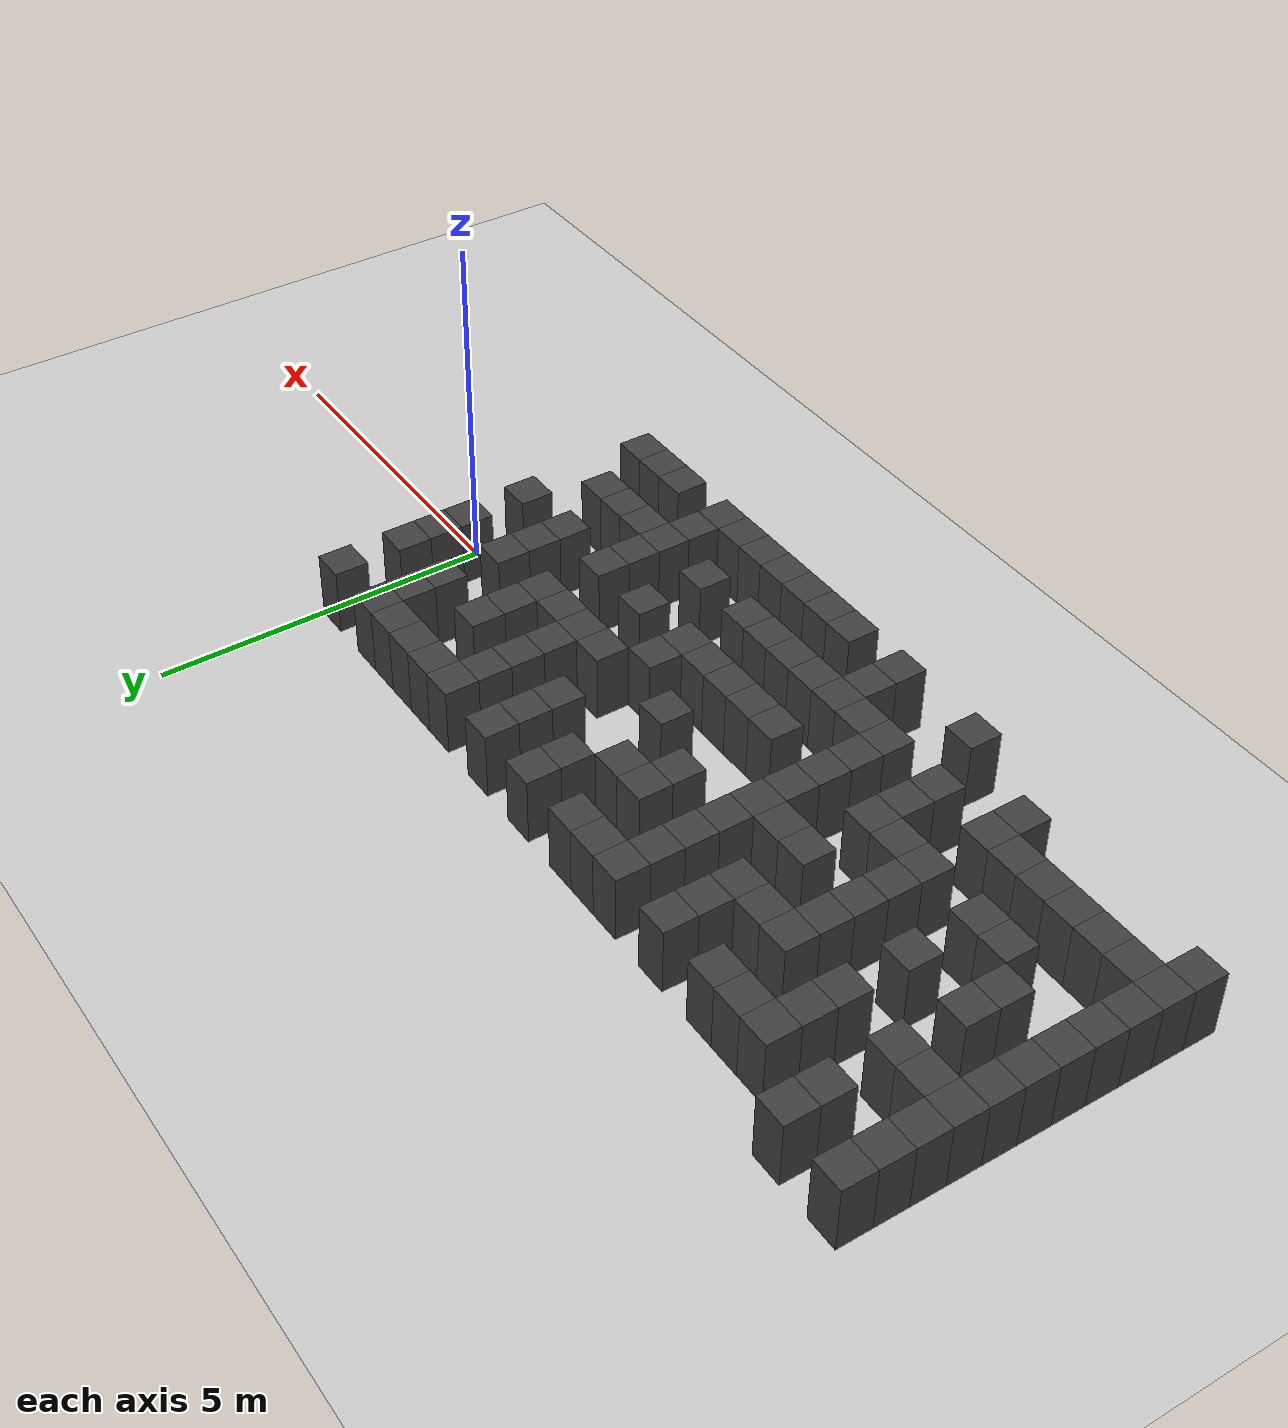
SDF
<sdf version="1.7">
 <world name="map_16884">
  <model name="ground_plane">
   <static>true</static>
   <link name="link">
    <collision name="collision">
     <geometry><plane><normal>0 0 1</normal><size>200 200</size></plane></geometry>
    </collision>
    <visual name="visual">
     <geometry><plane><normal>0 0 1</normal><size>200 200</size></plane></geometry>
     <material><ambient>0.8 0.8 0.8 1</ambient><diffuse>0.8 0.8 0.8 1</diffuse></material>
    </visual>
   </link>
  </model>
  <model name="maze_environment">
   <static>true</static>
   <link name="wall_483">
    <pose>-12.250 2.750 0.500 0 0 0</pose>
    <collision name="col"><geometry><box><size>0.5 0.5 1.0</size></box></geometry></collision>
    <visual name="vis">
     <geometry><box><size>0.5 0.5 1.0</size></box></geometry>
     <material><ambient>0.15 0.15 0.15 1</ambient><diffuse>0.25 0.25 0.25 1</diffuse></material>
    </visual>
   </link>
   <link name="wall_484">
    <pose>-11.250 2.750 0.500 0 0 0</pose>
    <collision name="col"><geometry><box><size>0.5 0.5 1.0</size></box></geometry></collision>
    <visual name="vis">
     <geometry><box><size>0.5 0.5 1.0</size></box></geometry>
     <material><ambient>0.15 0.15 0.15 1</ambient><diffuse>0.25 0.25 0.25 1</diffuse></material>
    </visual>
   </link>
   <link name="wall_498">
    <pose>-12.250 2.250 0.500 0 0 0</pose>
    <collision name="col"><geometry><box><size>0.5 0.5 1.0</size></box></geometry></collision>
    <visual name="vis">
     <geometry><box><size>0.5 0.5 1.0</size></box></geometry>
     <material><ambient>0.15 0.15 0.15 1</ambient><diffuse>0.25 0.25 0.25 1</diffuse></material>
    </visual>
   </link>
   <link name="wall_499">
    <pose>-11.250 2.250 0.500 0 0 0</pose>
    <collision name="col"><geometry><box><size>0.5 0.5 1.0</size></box></geometry></collision>
    <visual name="vis">
     <geometry><box><size>0.5 0.5 1.0</size></box></geometry>
     <material><ambient>0.15 0.15 0.15 1</ambient><diffuse>0.25 0.25 0.25 1</diffuse></material>
    </visual>
   </link>
   <link name="wall_500">
    <pose>-10.250 2.250 0.500 0 0 0</pose>
    <collision name="col"><geometry><box><size>0.5 0.5 1.0</size></box></geometry></collision>
    <visual name="vis">
     <geometry><box><size>0.5 0.5 1.0</size></box></geometry>
     <material><ambient>0.15 0.15 0.15 1</ambient><diffuse>0.25 0.25 0.25 1</diffuse></material>
    </visual>
   </link>
   <link name="wall_501">
    <pose>-9.750 2.250 0.500 0 0 0</pose>
    <collision name="col"><geometry><box><size>0.5 0.5 1.0</size></box></geometry></collision>
    <visual name="vis">
     <geometry><box><size>0.5 0.5 1.0</size></box></geometry>
     <material><ambient>0.15 0.15 0.15 1</ambient><diffuse>0.25 0.25 0.25 1</diffuse></material>
    </visual>
   </link>
   <link name="wall_502">
    <pose>-9.250 2.250 0.500 0 0 0</pose>
    <collision name="col"><geometry><box><size>0.5 0.5 1.0</size></box></geometry></collision>
    <visual name="vis">
     <geometry><box><size>0.5 0.5 1.0</size></box></geometry>
     <material><ambient>0.15 0.15 0.15 1</ambient><diffuse>0.25 0.25 0.25 1</diffuse></material>
    </visual>
   </link>
   <link name="wall_503">
    <pose>-8.250 2.250 0.500 0 0 0</pose>
    <collision name="col"><geometry><box><size>0.5 0.5 1.0</size></box></geometry></collision>
    <visual name="vis">
     <geometry><box><size>0.5 0.5 1.0</size></box></geometry>
     <material><ambient>0.15 0.15 0.15 1</ambient><diffuse>0.25 0.25 0.25 1</diffuse></material>
    </visual>
   </link>
   <link name="wall_504">
    <pose>-7.250 2.250 0.500 0 0 0</pose>
    <collision name="col"><geometry><box><size>0.5 0.5 1.0</size></box></geometry></collision>
    <visual name="vis">
     <geometry><box><size>0.5 0.5 1.0</size></box></geometry>
     <material><ambient>0.15 0.15 0.15 1</ambient><diffuse>0.25 0.25 0.25 1</diffuse></material>
    </visual>
   </link>
   <link name="wall_505">
    <pose>-6.750 2.250 0.500 0 0 0</pose>
    <collision name="col"><geometry><box><size>0.5 0.5 1.0</size></box></geometry></collision>
    <visual name="vis">
     <geometry><box><size>0.5 0.5 1.0</size></box></geometry>
     <material><ambient>0.15 0.15 0.15 1</ambient><diffuse>0.25 0.25 0.25 1</diffuse></material>
    </visual>
   </link>
   <link name="wall_506">
    <pose>-6.250 2.250 0.500 0 0 0</pose>
    <collision name="col"><geometry><box><size>0.5 0.5 1.0</size></box></geometry></collision>
    <visual name="vis">
     <geometry><box><size>0.5 0.5 1.0</size></box></geometry>
     <material><ambient>0.15 0.15 0.15 1</ambient><diffuse>0.25 0.25 0.25 1</diffuse></material>
    </visual>
   </link>
   <link name="wall_507">
    <pose>-5.250 2.250 0.500 0 0 0</pose>
    <collision name="col"><geometry><box><size>0.5 0.5 1.0</size></box></geometry></collision>
    <visual name="vis">
     <geometry><box><size>0.5 0.5 1.0</size></box></geometry>
     <material><ambient>0.15 0.15 0.15 1</ambient><diffuse>0.25 0.25 0.25 1</diffuse></material>
    </visual>
   </link>
   <link name="wall_508">
    <pose>-4.250 2.250 0.500 0 0 0</pose>
    <collision name="col"><geometry><box><size>0.5 0.5 1.0</size></box></geometry></collision>
    <visual name="vis">
     <geometry><box><size>0.5 0.5 1.0</size></box></geometry>
     <material><ambient>0.15 0.15 0.15 1</ambient><diffuse>0.25 0.25 0.25 1</diffuse></material>
    </visual>
   </link>
   <link name="wall_509">
    <pose>-3.250 2.250 0.500 0 0 0</pose>
    <collision name="col"><geometry><box><size>0.5 0.5 1.0</size></box></geometry></collision>
    <visual name="vis">
     <geometry><box><size>0.5 0.5 1.0</size></box></geometry>
     <material><ambient>0.15 0.15 0.15 1</ambient><diffuse>0.25 0.25 0.25 1</diffuse></material>
    </visual>
   </link>
   <link name="wall_510">
    <pose>-2.750 2.250 0.500 0 0 0</pose>
    <collision name="col"><geometry><box><size>0.5 0.5 1.0</size></box></geometry></collision>
    <visual name="vis">
     <geometry><box><size>0.5 0.5 1.0</size></box></geometry>
     <material><ambient>0.15 0.15 0.15 1</ambient><diffuse>0.25 0.25 0.25 1</diffuse></material>
    </visual>
   </link>
   <link name="wall_511">
    <pose>-2.250 2.250 0.500 0 0 0</pose>
    <collision name="col"><geometry><box><size>0.5 0.5 1.0</size></box></geometry></collision>
    <visual name="vis">
     <geometry><box><size>0.5 0.5 1.0</size></box></geometry>
     <material><ambient>0.15 0.15 0.15 1</ambient><diffuse>0.25 0.25 0.25 1</diffuse></material>
    </visual>
   </link>
   <link name="wall_512">
    <pose>-1.750 2.250 0.500 0 0 0</pose>
    <collision name="col"><geometry><box><size>0.5 0.5 1.0</size></box></geometry></collision>
    <visual name="vis">
     <geometry><box><size>0.5 0.5 1.0</size></box></geometry>
     <material><ambient>0.15 0.15 0.15 1</ambient><diffuse>0.25 0.25 0.25 1</diffuse></material>
    </visual>
   </link>
   <link name="wall_513">
    <pose>-1.250 2.250 0.500 0 0 0</pose>
    <collision name="col"><geometry><box><size>0.5 0.5 1.0</size></box></geometry></collision>
    <visual name="vis">
     <geometry><box><size>0.5 0.5 1.0</size></box></geometry>
     <material><ambient>0.15 0.15 0.15 1</ambient><diffuse>0.25 0.25 0.25 1</diffuse></material>
    </visual>
   </link>
   <link name="wall_514">
    <pose>-0.250 2.250 0.500 0 0 0</pose>
    <collision name="col"><geometry><box><size>0.5 0.5 1.0</size></box></geometry></collision>
    <visual name="vis">
     <geometry><box><size>0.5 0.5 1.0</size></box></geometry>
     <material><ambient>0.15 0.15 0.15 1</ambient><diffuse>0.25 0.25 0.25 1</diffuse></material>
    </visual>
   </link>
   <link name="wall_530">
    <pose>-12.250 1.750 0.500 0 0 0</pose>
    <collision name="col"><geometry><box><size>0.5 0.5 1.0</size></box></geometry></collision>
    <visual name="vis">
     <geometry><box><size>0.5 0.5 1.0</size></box></geometry>
     <material><ambient>0.15 0.15 0.15 1</ambient><diffuse>0.25 0.25 0.25 1</diffuse></material>
    </visual>
   </link>
   <link name="wall_531">
    <pose>-10.250 1.750 0.500 0 0 0</pose>
    <collision name="col"><geometry><box><size>0.5 0.5 1.0</size></box></geometry></collision>
    <visual name="vis">
     <geometry><box><size>0.5 0.5 1.0</size></box></geometry>
     <material><ambient>0.15 0.15 0.15 1</ambient><diffuse>0.25 0.25 0.25 1</diffuse></material>
    </visual>
   </link>
   <link name="wall_532">
    <pose>-8.250 1.750 0.500 0 0 0</pose>
    <collision name="col"><geometry><box><size>0.5 0.5 1.0</size></box></geometry></collision>
    <visual name="vis">
     <geometry><box><size>0.5 0.5 1.0</size></box></geometry>
     <material><ambient>0.15 0.15 0.15 1</ambient><diffuse>0.25 0.25 0.25 1</diffuse></material>
    </visual>
   </link>
   <link name="wall_533">
    <pose>-7.250 1.750 0.500 0 0 0</pose>
    <collision name="col"><geometry><box><size>0.5 0.5 1.0</size></box></geometry></collision>
    <visual name="vis">
     <geometry><box><size>0.5 0.5 1.0</size></box></geometry>
     <material><ambient>0.15 0.15 0.15 1</ambient><diffuse>0.25 0.25 0.25 1</diffuse></material>
    </visual>
   </link>
   <link name="wall_534">
    <pose>-5.250 1.750 0.500 0 0 0</pose>
    <collision name="col"><geometry><box><size>0.5 0.5 1.0</size></box></geometry></collision>
    <visual name="vis">
     <geometry><box><size>0.5 0.5 1.0</size></box></geometry>
     <material><ambient>0.15 0.15 0.15 1</ambient><diffuse>0.25 0.25 0.25 1</diffuse></material>
    </visual>
   </link>
   <link name="wall_535">
    <pose>-4.250 1.750 0.500 0 0 0</pose>
    <collision name="col"><geometry><box><size>0.5 0.5 1.0</size></box></geometry></collision>
    <visual name="vis">
     <geometry><box><size>0.5 0.5 1.0</size></box></geometry>
     <material><ambient>0.15 0.15 0.15 1</ambient><diffuse>0.25 0.25 0.25 1</diffuse></material>
    </visual>
   </link>
   <link name="wall_536">
    <pose>-3.250 1.750 0.500 0 0 0</pose>
    <collision name="col"><geometry><box><size>0.5 0.5 1.0</size></box></geometry></collision>
    <visual name="vis">
     <geometry><box><size>0.5 0.5 1.0</size></box></geometry>
     <material><ambient>0.15 0.15 0.15 1</ambient><diffuse>0.25 0.25 0.25 1</diffuse></material>
    </visual>
   </link>
   <link name="wall_537">
    <pose>-1.250 1.750 0.500 0 0 0</pose>
    <collision name="col"><geometry><box><size>0.5 0.5 1.0</size></box></geometry></collision>
    <visual name="vis">
     <geometry><box><size>0.5 0.5 1.0</size></box></geometry>
     <material><ambient>0.15 0.15 0.15 1</ambient><diffuse>0.25 0.25 0.25 1</diffuse></material>
    </visual>
   </link>
   <link name="wall_545">
    <pose>-12.250 1.250 0.500 0 0 0</pose>
    <collision name="col"><geometry><box><size>0.5 0.5 1.0</size></box></geometry></collision>
    <visual name="vis">
     <geometry><box><size>0.5 0.5 1.0</size></box></geometry>
     <material><ambient>0.15 0.15 0.15 1</ambient><diffuse>0.25 0.25 0.25 1</diffuse></material>
    </visual>
   </link>
   <link name="wall_546">
    <pose>-11.750 1.250 0.500 0 0 0</pose>
    <collision name="col"><geometry><box><size>0.5 0.5 1.0</size></box></geometry></collision>
    <visual name="vis">
     <geometry><box><size>0.5 0.5 1.0</size></box></geometry>
     <material><ambient>0.15 0.15 0.15 1</ambient><diffuse>0.25 0.25 0.25 1</diffuse></material>
    </visual>
   </link>
   <link name="wall_547">
    <pose>-11.250 1.250 0.500 0 0 0</pose>
    <collision name="col"><geometry><box><size>0.5 0.5 1.0</size></box></geometry></collision>
    <visual name="vis">
     <geometry><box><size>0.5 0.5 1.0</size></box></geometry>
     <material><ambient>0.15 0.15 0.15 1</ambient><diffuse>0.25 0.25 0.25 1</diffuse></material>
    </visual>
   </link>
   <link name="wall_548">
    <pose>-10.250 1.250 0.500 0 0 0</pose>
    <collision name="col"><geometry><box><size>0.5 0.5 1.0</size></box></geometry></collision>
    <visual name="vis">
     <geometry><box><size>0.5 0.5 1.0</size></box></geometry>
     <material><ambient>0.15 0.15 0.15 1</ambient><diffuse>0.25 0.25 0.25 1</diffuse></material>
    </visual>
   </link>
   <link name="wall_549">
    <pose>-9.250 1.250 0.500 0 0 0</pose>
    <collision name="col"><geometry><box><size>0.5 0.5 1.0</size></box></geometry></collision>
    <visual name="vis">
     <geometry><box><size>0.5 0.5 1.0</size></box></geometry>
     <material><ambient>0.15 0.15 0.15 1</ambient><diffuse>0.25 0.25 0.25 1</diffuse></material>
    </visual>
   </link>
   <link name="wall_550">
    <pose>-8.750 1.250 0.500 0 0 0</pose>
    <collision name="col"><geometry><box><size>0.5 0.5 1.0</size></box></geometry></collision>
    <visual name="vis">
     <geometry><box><size>0.5 0.5 1.0</size></box></geometry>
     <material><ambient>0.15 0.15 0.15 1</ambient><diffuse>0.25 0.25 0.25 1</diffuse></material>
    </visual>
   </link>
   <link name="wall_551">
    <pose>-8.250 1.250 0.500 0 0 0</pose>
    <collision name="col"><geometry><box><size>0.5 0.5 1.0</size></box></geometry></collision>
    <visual name="vis">
     <geometry><box><size>0.5 0.5 1.0</size></box></geometry>
     <material><ambient>0.15 0.15 0.15 1</ambient><diffuse>0.25 0.25 0.25 1</diffuse></material>
    </visual>
   </link>
   <link name="wall_552">
    <pose>-7.250 1.250 0.500 0 0 0</pose>
    <collision name="col"><geometry><box><size>0.5 0.5 1.0</size></box></geometry></collision>
    <visual name="vis">
     <geometry><box><size>0.5 0.5 1.0</size></box></geometry>
     <material><ambient>0.15 0.15 0.15 1</ambient><diffuse>0.25 0.25 0.25 1</diffuse></material>
    </visual>
   </link>
   <link name="wall_553">
    <pose>-6.250 1.250 0.500 0 0 0</pose>
    <collision name="col"><geometry><box><size>0.5 0.5 1.0</size></box></geometry></collision>
    <visual name="vis">
     <geometry><box><size>0.5 0.5 1.0</size></box></geometry>
     <material><ambient>0.15 0.15 0.15 1</ambient><diffuse>0.25 0.25 0.25 1</diffuse></material>
    </visual>
   </link>
   <link name="wall_554">
    <pose>-5.750 1.250 0.500 0 0 0</pose>
    <collision name="col"><geometry><box><size>0.5 0.5 1.0</size></box></geometry></collision>
    <visual name="vis">
     <geometry><box><size>0.5 0.5 1.0</size></box></geometry>
     <material><ambient>0.15 0.15 0.15 1</ambient><diffuse>0.25 0.25 0.25 1</diffuse></material>
    </visual>
   </link>
   <link name="wall_555">
    <pose>-4.250 1.250 0.500 0 0 0</pose>
    <collision name="col"><geometry><box><size>0.5 0.5 1.0</size></box></geometry></collision>
    <visual name="vis">
     <geometry><box><size>0.5 0.5 1.0</size></box></geometry>
     <material><ambient>0.15 0.15 0.15 1</ambient><diffuse>0.25 0.25 0.25 1</diffuse></material>
    </visual>
   </link>
   <link name="wall_556">
    <pose>-3.250 1.250 0.500 0 0 0</pose>
    <collision name="col"><geometry><box><size>0.5 0.5 1.0</size></box></geometry></collision>
    <visual name="vis">
     <geometry><box><size>0.5 0.5 1.0</size></box></geometry>
     <material><ambient>0.15 0.15 0.15 1</ambient><diffuse>0.25 0.25 0.25 1</diffuse></material>
    </visual>
   </link>
   <link name="wall_557">
    <pose>-2.250 1.250 0.500 0 0 0</pose>
    <collision name="col"><geometry><box><size>0.5 0.5 1.0</size></box></geometry></collision>
    <visual name="vis">
     <geometry><box><size>0.5 0.5 1.0</size></box></geometry>
     <material><ambient>0.15 0.15 0.15 1</ambient><diffuse>0.25 0.25 0.25 1</diffuse></material>
    </visual>
   </link>
   <link name="wall_558">
    <pose>-1.250 1.250 0.500 0 0 0</pose>
    <collision name="col"><geometry><box><size>0.5 0.5 1.0</size></box></geometry></collision>
    <visual name="vis">
     <geometry><box><size>0.5 0.5 1.0</size></box></geometry>
     <material><ambient>0.15 0.15 0.15 1</ambient><diffuse>0.25 0.25 0.25 1</diffuse></material>
    </visual>
   </link>
   <link name="wall_559">
    <pose>-0.250 1.250 0.500 0 0 0</pose>
    <collision name="col"><geometry><box><size>0.5 0.5 1.0</size></box></geometry></collision>
    <visual name="vis">
     <geometry><box><size>0.5 0.5 1.0</size></box></geometry>
     <material><ambient>0.15 0.15 0.15 1</ambient><diffuse>0.25 0.25 0.25 1</diffuse></material>
    </visual>
   </link>
   <link name="wall_576">
    <pose>-12.250 0.750 0.500 0 0 0</pose>
    <collision name="col"><geometry><box><size>0.5 0.5 1.0</size></box></geometry></collision>
    <visual name="vis">
     <geometry><box><size>0.5 0.5 1.0</size></box></geometry>
     <material><ambient>0.15 0.15 0.15 1</ambient><diffuse>0.25 0.25 0.25 1</diffuse></material>
    </visual>
   </link>
   <link name="wall_577">
    <pose>-9.250 0.750 0.500 0 0 0</pose>
    <collision name="col"><geometry><box><size>0.5 0.5 1.0</size></box></geometry></collision>
    <visual name="vis">
     <geometry><box><size>0.5 0.5 1.0</size></box></geometry>
     <material><ambient>0.15 0.15 0.15 1</ambient><diffuse>0.25 0.25 0.25 1</diffuse></material>
    </visual>
   </link>
   <link name="wall_578">
    <pose>-7.250 0.750 0.500 0 0 0</pose>
    <collision name="col"><geometry><box><size>0.5 0.5 1.0</size></box></geometry></collision>
    <visual name="vis">
     <geometry><box><size>0.5 0.5 1.0</size></box></geometry>
     <material><ambient>0.15 0.15 0.15 1</ambient><diffuse>0.25 0.25 0.25 1</diffuse></material>
    </visual>
   </link>
   <link name="wall_579">
    <pose>-6.250 0.750 0.500 0 0 0</pose>
    <collision name="col"><geometry><box><size>0.5 0.5 1.0</size></box></geometry></collision>
    <visual name="vis">
     <geometry><box><size>0.5 0.5 1.0</size></box></geometry>
     <material><ambient>0.15 0.15 0.15 1</ambient><diffuse>0.25 0.25 0.25 1</diffuse></material>
    </visual>
   </link>
   <link name="wall_580">
    <pose>-3.250 0.750 0.500 0 0 0</pose>
    <collision name="col"><geometry><box><size>0.5 0.5 1.0</size></box></geometry></collision>
    <visual name="vis">
     <geometry><box><size>0.5 0.5 1.0</size></box></geometry>
     <material><ambient>0.15 0.15 0.15 1</ambient><diffuse>0.25 0.25 0.25 1</diffuse></material>
    </visual>
   </link>
   <link name="wall_581">
    <pose>-2.250 0.750 0.500 0 0 0</pose>
    <collision name="col"><geometry><box><size>0.5 0.5 1.0</size></box></geometry></collision>
    <visual name="vis">
     <geometry><box><size>0.5 0.5 1.0</size></box></geometry>
     <material><ambient>0.15 0.15 0.15 1</ambient><diffuse>0.25 0.25 0.25 1</diffuse></material>
    </visual>
   </link>
   <link name="wall_582">
    <pose>-0.250 0.750 0.500 0 0 0</pose>
    <collision name="col"><geometry><box><size>0.5 0.5 1.0</size></box></geometry></collision>
    <visual name="vis">
     <geometry><box><size>0.5 0.5 1.0</size></box></geometry>
     <material><ambient>0.15 0.15 0.15 1</ambient><diffuse>0.25 0.25 0.25 1</diffuse></material>
    </visual>
   </link>
   <link name="wall_590">
    <pose>-12.250 0.250 0.500 0 0 0</pose>
    <collision name="col"><geometry><box><size>0.5 0.5 1.0</size></box></geometry></collision>
    <visual name="vis">
     <geometry><box><size>0.5 0.5 1.0</size></box></geometry>
     <material><ambient>0.15 0.15 0.15 1</ambient><diffuse>0.25 0.25 0.25 1</diffuse></material>
    </visual>
   </link>
   <link name="wall_591">
    <pose>-11.250 0.250 0.500 0 0 0</pose>
    <collision name="col"><geometry><box><size>0.5 0.5 1.0</size></box></geometry></collision>
    <visual name="vis">
     <geometry><box><size>0.5 0.5 1.0</size></box></geometry>
     <material><ambient>0.15 0.15 0.15 1</ambient><diffuse>0.25 0.25 0.25 1</diffuse></material>
    </visual>
   </link>
   <link name="wall_592">
    <pose>-10.250 0.250 0.500 0 0 0</pose>
    <collision name="col"><geometry><box><size>0.5 0.5 1.0</size></box></geometry></collision>
    <visual name="vis">
     <geometry><box><size>0.5 0.5 1.0</size></box></geometry>
     <material><ambient>0.15 0.15 0.15 1</ambient><diffuse>0.25 0.25 0.25 1</diffuse></material>
    </visual>
   </link>
   <link name="wall_593">
    <pose>-9.250 0.250 0.500 0 0 0</pose>
    <collision name="col"><geometry><box><size>0.5 0.5 1.0</size></box></geometry></collision>
    <visual name="vis">
     <geometry><box><size>0.5 0.5 1.0</size></box></geometry>
     <material><ambient>0.15 0.15 0.15 1</ambient><diffuse>0.25 0.25 0.25 1</diffuse></material>
    </visual>
   </link>
   <link name="wall_594">
    <pose>-8.250 0.250 0.500 0 0 0</pose>
    <collision name="col"><geometry><box><size>0.5 0.5 1.0</size></box></geometry></collision>
    <visual name="vis">
     <geometry><box><size>0.5 0.5 1.0</size></box></geometry>
     <material><ambient>0.15 0.15 0.15 1</ambient><diffuse>0.25 0.25 0.25 1</diffuse></material>
    </visual>
   </link>
   <link name="wall_595">
    <pose>-7.750 0.250 0.500 0 0 0</pose>
    <collision name="col"><geometry><box><size>0.5 0.5 1.0</size></box></geometry></collision>
    <visual name="vis">
     <geometry><box><size>0.5 0.5 1.0</size></box></geometry>
     <material><ambient>0.15 0.15 0.15 1</ambient><diffuse>0.25 0.25 0.25 1</diffuse></material>
    </visual>
   </link>
   <link name="wall_596">
    <pose>-7.250 0.250 0.500 0 0 0</pose>
    <collision name="col"><geometry><box><size>0.5 0.5 1.0</size></box></geometry></collision>
    <visual name="vis">
     <geometry><box><size>0.5 0.5 1.0</size></box></geometry>
     <material><ambient>0.15 0.15 0.15 1</ambient><diffuse>0.25 0.25 0.25 1</diffuse></material>
    </visual>
   </link>
   <link name="wall_597">
    <pose>-5.250 0.250 0.500 0 0 0</pose>
    <collision name="col"><geometry><box><size>0.5 0.5 1.0</size></box></geometry></collision>
    <visual name="vis">
     <geometry><box><size>0.5 0.5 1.0</size></box></geometry>
     <material><ambient>0.15 0.15 0.15 1</ambient><diffuse>0.25 0.25 0.25 1</diffuse></material>
    </visual>
   </link>
   <link name="wall_598">
    <pose>-3.750 0.250 0.500 0 0 0</pose>
    <collision name="col"><geometry><box><size>0.5 0.5 1.0</size></box></geometry></collision>
    <visual name="vis">
     <geometry><box><size>0.5 0.5 1.0</size></box></geometry>
     <material><ambient>0.15 0.15 0.15 1</ambient><diffuse>0.25 0.25 0.25 1</diffuse></material>
    </visual>
   </link>
   <link name="wall_599">
    <pose>-3.250 0.250 0.500 0 0 0</pose>
    <collision name="col"><geometry><box><size>0.5 0.5 1.0</size></box></geometry></collision>
    <visual name="vis">
     <geometry><box><size>0.5 0.5 1.0</size></box></geometry>
     <material><ambient>0.15 0.15 0.15 1</ambient><diffuse>0.25 0.25 0.25 1</diffuse></material>
    </visual>
   </link>
   <link name="wall_600">
    <pose>-2.750 0.250 0.500 0 0 0</pose>
    <collision name="col"><geometry><box><size>0.5 0.5 1.0</size></box></geometry></collision>
    <visual name="vis">
     <geometry><box><size>0.5 0.5 1.0</size></box></geometry>
     <material><ambient>0.15 0.15 0.15 1</ambient><diffuse>0.25 0.25 0.25 1</diffuse></material>
    </visual>
   </link>
   <link name="wall_601">
    <pose>-2.250 0.250 0.500 0 0 0</pose>
    <collision name="col"><geometry><box><size>0.5 0.5 1.0</size></box></geometry></collision>
    <visual name="vis">
     <geometry><box><size>0.5 0.5 1.0</size></box></geometry>
     <material><ambient>0.15 0.15 0.15 1</ambient><diffuse>0.25 0.25 0.25 1</diffuse></material>
    </visual>
   </link>
   <link name="wall_602">
    <pose>-1.250 0.250 0.500 0 0 0</pose>
    <collision name="col"><geometry><box><size>0.5 0.5 1.0</size></box></geometry></collision>
    <visual name="vis">
     <geometry><box><size>0.5 0.5 1.0</size></box></geometry>
     <material><ambient>0.15 0.15 0.15 1</ambient><diffuse>0.25 0.25 0.25 1</diffuse></material>
    </visual>
   </link>
   <link name="wall_603">
    <pose>-0.250 0.250 0.500 0 0 0</pose>
    <collision name="col"><geometry><box><size>0.5 0.5 1.0</size></box></geometry></collision>
    <visual name="vis">
     <geometry><box><size>0.5 0.5 1.0</size></box></geometry>
     <material><ambient>0.15 0.15 0.15 1</ambient><diffuse>0.25 0.25 0.25 1</diffuse></material>
    </visual>
   </link>
   <link name="wall_620">
    <pose>-12.250 -0.250 0.500 0 0 0</pose>
    <collision name="col"><geometry><box><size>0.5 0.5 1.0</size></box></geometry></collision>
    <visual name="vis">
     <geometry><box><size>0.5 0.5 1.0</size></box></geometry>
     <material><ambient>0.15 0.15 0.15 1</ambient><diffuse>0.25 0.25 0.25 1</diffuse></material>
    </visual>
   </link>
   <link name="wall_621">
    <pose>-11.250 -0.250 0.500 0 0 0</pose>
    <collision name="col"><geometry><box><size>0.5 0.5 1.0</size></box></geometry></collision>
    <visual name="vis">
     <geometry><box><size>0.5 0.5 1.0</size></box></geometry>
     <material><ambient>0.15 0.15 0.15 1</ambient><diffuse>0.25 0.25 0.25 1</diffuse></material>
    </visual>
   </link>
   <link name="wall_622">
    <pose>-9.250 -0.250 0.500 0 0 0</pose>
    <collision name="col"><geometry><box><size>0.5 0.5 1.0</size></box></geometry></collision>
    <visual name="vis">
     <geometry><box><size>0.5 0.5 1.0</size></box></geometry>
     <material><ambient>0.15 0.15 0.15 1</ambient><diffuse>0.25 0.25 0.25 1</diffuse></material>
    </visual>
   </link>
   <link name="wall_623">
    <pose>-7.250 -0.250 0.500 0 0 0</pose>
    <collision name="col"><geometry><box><size>0.5 0.5 1.0</size></box></geometry></collision>
    <visual name="vis">
     <geometry><box><size>0.5 0.5 1.0</size></box></geometry>
     <material><ambient>0.15 0.15 0.15 1</ambient><diffuse>0.25 0.25 0.25 1</diffuse></material>
    </visual>
   </link>
   <link name="wall_624">
    <pose>-4.250 -0.250 0.500 0 0 0</pose>
    <collision name="col"><geometry><box><size>0.5 0.5 1.0</size></box></geometry></collision>
    <visual name="vis">
     <geometry><box><size>0.5 0.5 1.0</size></box></geometry>
     <material><ambient>0.15 0.15 0.15 1</ambient><diffuse>0.25 0.25 0.25 1</diffuse></material>
    </visual>
   </link>
   <link name="wall_625">
    <pose>-1.250 -0.250 0.500 0 0 0</pose>
    <collision name="col"><geometry><box><size>0.5 0.5 1.0</size></box></geometry></collision>
    <visual name="vis">
     <geometry><box><size>0.5 0.5 1.0</size></box></geometry>
     <material><ambient>0.15 0.15 0.15 1</ambient><diffuse>0.25 0.25 0.25 1</diffuse></material>
    </visual>
   </link>
   <link name="wall_631">
    <pose>-12.250 -0.750 0.500 0 0 0</pose>
    <collision name="col"><geometry><box><size>0.5 0.5 1.0</size></box></geometry></collision>
    <visual name="vis">
     <geometry><box><size>0.5 0.5 1.0</size></box></geometry>
     <material><ambient>0.15 0.15 0.15 1</ambient><diffuse>0.25 0.25 0.25 1</diffuse></material>
    </visual>
   </link>
   <link name="wall_632">
    <pose>-10.750 -0.750 0.500 0 0 0</pose>
    <collision name="col"><geometry><box><size>0.5 0.5 1.0</size></box></geometry></collision>
    <visual name="vis">
     <geometry><box><size>0.5 0.5 1.0</size></box></geometry>
     <material><ambient>0.15 0.15 0.15 1</ambient><diffuse>0.25 0.25 0.25 1</diffuse></material>
    </visual>
   </link>
   <link name="wall_633">
    <pose>-10.250 -0.750 0.500 0 0 0</pose>
    <collision name="col"><geometry><box><size>0.5 0.5 1.0</size></box></geometry></collision>
    <visual name="vis">
     <geometry><box><size>0.5 0.5 1.0</size></box></geometry>
     <material><ambient>0.15 0.15 0.15 1</ambient><diffuse>0.25 0.25 0.25 1</diffuse></material>
    </visual>
   </link>
   <link name="wall_634">
    <pose>-9.250 -0.750 0.500 0 0 0</pose>
    <collision name="col"><geometry><box><size>0.5 0.5 1.0</size></box></geometry></collision>
    <visual name="vis">
     <geometry><box><size>0.5 0.5 1.0</size></box></geometry>
     <material><ambient>0.15 0.15 0.15 1</ambient><diffuse>0.25 0.25 0.25 1</diffuse></material>
    </visual>
   </link>
   <link name="wall_635">
    <pose>-8.750 -0.750 0.500 0 0 0</pose>
    <collision name="col"><geometry><box><size>0.5 0.5 1.0</size></box></geometry></collision>
    <visual name="vis">
     <geometry><box><size>0.5 0.5 1.0</size></box></geometry>
     <material><ambient>0.15 0.15 0.15 1</ambient><diffuse>0.25 0.25 0.25 1</diffuse></material>
    </visual>
   </link>
   <link name="wall_636">
    <pose>-8.250 -0.750 0.500 0 0 0</pose>
    <collision name="col"><geometry><box><size>0.5 0.5 1.0</size></box></geometry></collision>
    <visual name="vis">
     <geometry><box><size>0.5 0.5 1.0</size></box></geometry>
     <material><ambient>0.15 0.15 0.15 1</ambient><diffuse>0.25 0.25 0.25 1</diffuse></material>
    </visual>
   </link>
   <link name="wall_637">
    <pose>-7.250 -0.750 0.500 0 0 0</pose>
    <collision name="col"><geometry><box><size>0.5 0.5 1.0</size></box></geometry></collision>
    <visual name="vis">
     <geometry><box><size>0.5 0.5 1.0</size></box></geometry>
     <material><ambient>0.15 0.15 0.15 1</ambient><diffuse>0.25 0.25 0.25 1</diffuse></material>
    </visual>
   </link>
   <link name="wall_638">
    <pose>-6.250 -0.750 0.500 0 0 0</pose>
    <collision name="col"><geometry><box><size>0.5 0.5 1.0</size></box></geometry></collision>
    <visual name="vis">
     <geometry><box><size>0.5 0.5 1.0</size></box></geometry>
     <material><ambient>0.15 0.15 0.15 1</ambient><diffuse>0.25 0.25 0.25 1</diffuse></material>
    </visual>
   </link>
   <link name="wall_639">
    <pose>-5.750 -0.750 0.500 0 0 0</pose>
    <collision name="col"><geometry><box><size>0.5 0.5 1.0</size></box></geometry></collision>
    <visual name="vis">
     <geometry><box><size>0.5 0.5 1.0</size></box></geometry>
     <material><ambient>0.15 0.15 0.15 1</ambient><diffuse>0.25 0.25 0.25 1</diffuse></material>
    </visual>
   </link>
   <link name="wall_640">
    <pose>-5.250 -0.750 0.500 0 0 0</pose>
    <collision name="col"><geometry><box><size>0.5 0.5 1.0</size></box></geometry></collision>
    <visual name="vis">
     <geometry><box><size>0.5 0.5 1.0</size></box></geometry>
     <material><ambient>0.15 0.15 0.15 1</ambient><diffuse>0.25 0.25 0.25 1</diffuse></material>
    </visual>
   </link>
   <link name="wall_641">
    <pose>-4.750 -0.750 0.500 0 0 0</pose>
    <collision name="col"><geometry><box><size>0.5 0.5 1.0</size></box></geometry></collision>
    <visual name="vis">
     <geometry><box><size>0.5 0.5 1.0</size></box></geometry>
     <material><ambient>0.15 0.15 0.15 1</ambient><diffuse>0.25 0.25 0.25 1</diffuse></material>
    </visual>
   </link>
   <link name="wall_642">
    <pose>-4.250 -0.750 0.500 0 0 0</pose>
    <collision name="col"><geometry><box><size>0.5 0.5 1.0</size></box></geometry></collision>
    <visual name="vis">
     <geometry><box><size>0.5 0.5 1.0</size></box></geometry>
     <material><ambient>0.15 0.15 0.15 1</ambient><diffuse>0.25 0.25 0.25 1</diffuse></material>
    </visual>
   </link>
   <link name="wall_643">
    <pose>-3.250 -0.750 0.500 0 0 0</pose>
    <collision name="col"><geometry><box><size>0.5 0.5 1.0</size></box></geometry></collision>
    <visual name="vis">
     <geometry><box><size>0.5 0.5 1.0</size></box></geometry>
     <material><ambient>0.15 0.15 0.15 1</ambient><diffuse>0.25 0.25 0.25 1</diffuse></material>
    </visual>
   </link>
   <link name="wall_644">
    <pose>-2.250 -0.750 0.500 0 0 0</pose>
    <collision name="col"><geometry><box><size>0.5 0.5 1.0</size></box></geometry></collision>
    <visual name="vis">
     <geometry><box><size>0.5 0.5 1.0</size></box></geometry>
     <material><ambient>0.15 0.15 0.15 1</ambient><diffuse>0.25 0.25 0.25 1</diffuse></material>
    </visual>
   </link>
   <link name="wall_645">
    <pose>-1.250 -0.750 0.500 0 0 0</pose>
    <collision name="col"><geometry><box><size>0.5 0.5 1.0</size></box></geometry></collision>
    <visual name="vis">
     <geometry><box><size>0.5 0.5 1.0</size></box></geometry>
     <material><ambient>0.15 0.15 0.15 1</ambient><diffuse>0.25 0.25 0.25 1</diffuse></material>
    </visual>
   </link>
   <link name="wall_646">
    <pose>-0.250 -0.750 0.500 0 0 0</pose>
    <collision name="col"><geometry><box><size>0.5 0.5 1.0</size></box></geometry></collision>
    <visual name="vis">
     <geometry><box><size>0.5 0.5 1.0</size></box></geometry>
     <material><ambient>0.15 0.15 0.15 1</ambient><diffuse>0.25 0.25 0.25 1</diffuse></material>
    </visual>
   </link>
   <link name="wall_665">
    <pose>-12.250 -1.250 0.500 0 0 0</pose>
    <collision name="col"><geometry><box><size>0.5 0.5 1.0</size></box></geometry></collision>
    <visual name="vis">
     <geometry><box><size>0.5 0.5 1.0</size></box></geometry>
     <material><ambient>0.15 0.15 0.15 1</ambient><diffuse>0.25 0.25 0.25 1</diffuse></material>
    </visual>
   </link>
   <link name="wall_666">
    <pose>-8.250 -1.250 0.500 0 0 0</pose>
    <collision name="col"><geometry><box><size>0.5 0.5 1.0</size></box></geometry></collision>
    <visual name="vis">
     <geometry><box><size>0.5 0.5 1.0</size></box></geometry>
     <material><ambient>0.15 0.15 0.15 1</ambient><diffuse>0.25 0.25 0.25 1</diffuse></material>
    </visual>
   </link>
   <link name="wall_667">
    <pose>-7.250 -1.250 0.500 0 0 0</pose>
    <collision name="col"><geometry><box><size>0.5 0.5 1.0</size></box></geometry></collision>
    <visual name="vis">
     <geometry><box><size>0.5 0.5 1.0</size></box></geometry>
     <material><ambient>0.15 0.15 0.15 1</ambient><diffuse>0.25 0.25 0.25 1</diffuse></material>
    </visual>
   </link>
   <link name="wall_668">
    <pose>-2.250 -1.250 0.500 0 0 0</pose>
    <collision name="col"><geometry><box><size>0.5 0.5 1.0</size></box></geometry></collision>
    <visual name="vis">
     <geometry><box><size>0.5 0.5 1.0</size></box></geometry>
     <material><ambient>0.15 0.15 0.15 1</ambient><diffuse>0.25 0.25 0.25 1</diffuse></material>
    </visual>
   </link>
   <link name="wall_675">
    <pose>-12.250 -1.750 0.500 0 0 0</pose>
    <collision name="col"><geometry><box><size>0.5 0.5 1.0</size></box></geometry></collision>
    <visual name="vis">
     <geometry><box><size>0.5 0.5 1.0</size></box></geometry>
     <material><ambient>0.15 0.15 0.15 1</ambient><diffuse>0.25 0.25 0.25 1</diffuse></material>
    </visual>
   </link>
   <link name="wall_676">
    <pose>-11.750 -1.750 0.500 0 0 0</pose>
    <collision name="col"><geometry><box><size>0.5 0.5 1.0</size></box></geometry></collision>
    <visual name="vis">
     <geometry><box><size>0.5 0.5 1.0</size></box></geometry>
     <material><ambient>0.15 0.15 0.15 1</ambient><diffuse>0.25 0.25 0.25 1</diffuse></material>
    </visual>
   </link>
   <link name="wall_677">
    <pose>-11.250 -1.750 0.500 0 0 0</pose>
    <collision name="col"><geometry><box><size>0.5 0.5 1.0</size></box></geometry></collision>
    <visual name="vis">
     <geometry><box><size>0.5 0.5 1.0</size></box></geometry>
     <material><ambient>0.15 0.15 0.15 1</ambient><diffuse>0.25 0.25 0.25 1</diffuse></material>
    </visual>
   </link>
   <link name="wall_678">
    <pose>-10.750 -1.750 0.500 0 0 0</pose>
    <collision name="col"><geometry><box><size>0.5 0.5 1.0</size></box></geometry></collision>
    <visual name="vis">
     <geometry><box><size>0.5 0.5 1.0</size></box></geometry>
     <material><ambient>0.15 0.15 0.15 1</ambient><diffuse>0.25 0.25 0.25 1</diffuse></material>
    </visual>
   </link>
   <link name="wall_679">
    <pose>-10.250 -1.750 0.500 0 0 0</pose>
    <collision name="col"><geometry><box><size>0.5 0.5 1.0</size></box></geometry></collision>
    <visual name="vis">
     <geometry><box><size>0.5 0.5 1.0</size></box></geometry>
     <material><ambient>0.15 0.15 0.15 1</ambient><diffuse>0.25 0.25 0.25 1</diffuse></material>
    </visual>
   </link>
   <link name="wall_680">
    <pose>-9.750 -1.750 0.500 0 0 0</pose>
    <collision name="col"><geometry><box><size>0.5 0.5 1.0</size></box></geometry></collision>
    <visual name="vis">
     <geometry><box><size>0.5 0.5 1.0</size></box></geometry>
     <material><ambient>0.15 0.15 0.15 1</ambient><diffuse>0.25 0.25 0.25 1</diffuse></material>
    </visual>
   </link>
   <link name="wall_681">
    <pose>-9.250 -1.750 0.500 0 0 0</pose>
    <collision name="col"><geometry><box><size>0.5 0.5 1.0</size></box></geometry></collision>
    <visual name="vis">
     <geometry><box><size>0.5 0.5 1.0</size></box></geometry>
     <material><ambient>0.15 0.15 0.15 1</ambient><diffuse>0.25 0.25 0.25 1</diffuse></material>
    </visual>
   </link>
   <link name="wall_682">
    <pose>-8.250 -1.750 0.500 0 0 0</pose>
    <collision name="col"><geometry><box><size>0.5 0.5 1.0</size></box></geometry></collision>
    <visual name="vis">
     <geometry><box><size>0.5 0.5 1.0</size></box></geometry>
     <material><ambient>0.15 0.15 0.15 1</ambient><diffuse>0.25 0.25 0.25 1</diffuse></material>
    </visual>
   </link>
   <link name="wall_683">
    <pose>-7.250 -1.750 0.500 0 0 0</pose>
    <collision name="col"><geometry><box><size>0.5 0.5 1.0</size></box></geometry></collision>
    <visual name="vis">
     <geometry><box><size>0.5 0.5 1.0</size></box></geometry>
     <material><ambient>0.15 0.15 0.15 1</ambient><diffuse>0.25 0.25 0.25 1</diffuse></material>
    </visual>
   </link>
   <link name="wall_684">
    <pose>-6.750 -1.750 0.500 0 0 0</pose>
    <collision name="col"><geometry><box><size>0.5 0.5 1.0</size></box></geometry></collision>
    <visual name="vis">
     <geometry><box><size>0.5 0.5 1.0</size></box></geometry>
     <material><ambient>0.15 0.15 0.15 1</ambient><diffuse>0.25 0.25 0.25 1</diffuse></material>
    </visual>
   </link>
   <link name="wall_685">
    <pose>-6.250 -1.750 0.500 0 0 0</pose>
    <collision name="col"><geometry><box><size>0.5 0.5 1.0</size></box></geometry></collision>
    <visual name="vis">
     <geometry><box><size>0.5 0.5 1.0</size></box></geometry>
     <material><ambient>0.15 0.15 0.15 1</ambient><diffuse>0.25 0.25 0.25 1</diffuse></material>
    </visual>
   </link>
   <link name="wall_686">
    <pose>-5.750 -1.750 0.500 0 0 0</pose>
    <collision name="col"><geometry><box><size>0.5 0.5 1.0</size></box></geometry></collision>
    <visual name="vis">
     <geometry><box><size>0.5 0.5 1.0</size></box></geometry>
     <material><ambient>0.15 0.15 0.15 1</ambient><diffuse>0.25 0.25 0.25 1</diffuse></material>
    </visual>
   </link>
   <link name="wall_687">
    <pose>-5.250 -1.750 0.500 0 0 0</pose>
    <collision name="col"><geometry><box><size>0.5 0.5 1.0</size></box></geometry></collision>
    <visual name="vis">
     <geometry><box><size>0.5 0.5 1.0</size></box></geometry>
     <material><ambient>0.15 0.15 0.15 1</ambient><diffuse>0.25 0.25 0.25 1</diffuse></material>
    </visual>
   </link>
   <link name="wall_688">
    <pose>-4.750 -1.750 0.500 0 0 0</pose>
    <collision name="col"><geometry><box><size>0.5 0.5 1.0</size></box></geometry></collision>
    <visual name="vis">
     <geometry><box><size>0.5 0.5 1.0</size></box></geometry>
     <material><ambient>0.15 0.15 0.15 1</ambient><diffuse>0.25 0.25 0.25 1</diffuse></material>
    </visual>
   </link>
   <link name="wall_689">
    <pose>-4.250 -1.750 0.500 0 0 0</pose>
    <collision name="col"><geometry><box><size>0.5 0.5 1.0</size></box></geometry></collision>
    <visual name="vis">
     <geometry><box><size>0.5 0.5 1.0</size></box></geometry>
     <material><ambient>0.15 0.15 0.15 1</ambient><diffuse>0.25 0.25 0.25 1</diffuse></material>
    </visual>
   </link>
   <link name="wall_690">
    <pose>-3.250 -1.750 0.500 0 0 0</pose>
    <collision name="col"><geometry><box><size>0.5 0.5 1.0</size></box></geometry></collision>
    <visual name="vis">
     <geometry><box><size>0.5 0.5 1.0</size></box></geometry>
     <material><ambient>0.15 0.15 0.15 1</ambient><diffuse>0.25 0.25 0.25 1</diffuse></material>
    </visual>
   </link>
   <link name="wall_691">
    <pose>-2.250 -1.750 0.500 0 0 0</pose>
    <collision name="col"><geometry><box><size>0.5 0.5 1.0</size></box></geometry></collision>
    <visual name="vis">
     <geometry><box><size>0.5 0.5 1.0</size></box></geometry>
     <material><ambient>0.15 0.15 0.15 1</ambient><diffuse>0.25 0.25 0.25 1</diffuse></material>
    </visual>
   </link>
   <link name="wall_692">
    <pose>-1.750 -1.750 0.500 0 0 0</pose>
    <collision name="col"><geometry><box><size>0.5 0.5 1.0</size></box></geometry></collision>
    <visual name="vis">
     <geometry><box><size>0.5 0.5 1.0</size></box></geometry>
     <material><ambient>0.15 0.15 0.15 1</ambient><diffuse>0.25 0.25 0.25 1</diffuse></material>
    </visual>
   </link>
   <link name="wall_693">
    <pose>-1.250 -1.750 0.500 0 0 0</pose>
    <collision name="col"><geometry><box><size>0.5 0.5 1.0</size></box></geometry></collision>
    <visual name="vis">
     <geometry><box><size>0.5 0.5 1.0</size></box></geometry>
     <material><ambient>0.15 0.15 0.15 1</ambient><diffuse>0.25 0.25 0.25 1</diffuse></material>
    </visual>
   </link>
   <link name="wall_694">
    <pose>-0.750 -1.750 0.500 0 0 0</pose>
    <collision name="col"><geometry><box><size>0.5 0.5 1.0</size></box></geometry></collision>
    <visual name="vis">
     <geometry><box><size>0.5 0.5 1.0</size></box></geometry>
     <material><ambient>0.15 0.15 0.15 1</ambient><diffuse>0.25 0.25 0.25 1</diffuse></material>
    </visual>
   </link>
   <link name="wall_712">
    <pose>-12.250 -2.250 0.500 0 0 0</pose>
    <collision name="col"><geometry><box><size>0.5 0.5 1.0</size></box></geometry></collision>
    <visual name="vis">
     <geometry><box><size>0.5 0.5 1.0</size></box></geometry>
     <material><ambient>0.15 0.15 0.15 1</ambient><diffuse>0.25 0.25 0.25 1</diffuse></material>
    </visual>
   </link>
   <link name="wall_713">
    <pose>-9.250 -2.250 0.500 0 0 0</pose>
    <collision name="col"><geometry><box><size>0.5 0.5 1.0</size></box></geometry></collision>
    <visual name="vis">
     <geometry><box><size>0.5 0.5 1.0</size></box></geometry>
     <material><ambient>0.15 0.15 0.15 1</ambient><diffuse>0.25 0.25 0.25 1</diffuse></material>
    </visual>
   </link>
   <link name="wall_714">
    <pose>-6.250 -2.250 0.500 0 0 0</pose>
    <collision name="col"><geometry><box><size>0.5 0.5 1.0</size></box></geometry></collision>
    <visual name="vis">
     <geometry><box><size>0.5 0.5 1.0</size></box></geometry>
     <material><ambient>0.15 0.15 0.15 1</ambient><diffuse>0.25 0.25 0.25 1</diffuse></material>
    </visual>
   </link>
   <link name="wall_715">
    <pose>-2.250 -2.250 0.500 0 0 0</pose>
    <collision name="col"><geometry><box><size>0.5 0.5 1.0</size></box></geometry></collision>
    <visual name="vis">
     <geometry><box><size>0.5 0.5 1.0</size></box></geometry>
     <material><ambient>0.15 0.15 0.15 1</ambient><diffuse>0.25 0.25 0.25 1</diffuse></material>
    </visual>
   </link>
   <link name="wall_730">
    <pose>-7.750 -2.750 0.500 0 0 0</pose>
    <collision name="col"><geometry><box><size>0.5 0.5 1.0</size></box></geometry></collision>
    <visual name="vis">
     <geometry><box><size>0.5 0.5 1.0</size></box></geometry>
     <material><ambient>0.15 0.15 0.15 1</ambient><diffuse>0.25 0.25 0.25 1</diffuse></material>
    </visual>
   </link>
   <link name="wall_731">
    <pose>-6.250 -2.750 0.500 0 0 0</pose>
    <collision name="col"><geometry><box><size>0.5 0.5 1.0</size></box></geometry></collision>
    <visual name="vis">
     <geometry><box><size>0.5 0.5 1.0</size></box></geometry>
     <material><ambient>0.15 0.15 0.15 1</ambient><diffuse>0.25 0.25 0.25 1</diffuse></material>
    </visual>
   </link>
   <link name="wall_732">
    <pose>-5.250 -2.750 0.500 0 0 0</pose>
    <collision name="col"><geometry><box><size>0.5 0.5 1.0</size></box></geometry></collision>
    <visual name="vis">
     <geometry><box><size>0.5 0.5 1.0</size></box></geometry>
     <material><ambient>0.15 0.15 0.15 1</ambient><diffuse>0.25 0.25 0.25 1</diffuse></material>
    </visual>
   </link>
   <link name="wall_733">
    <pose>-4.750 -2.750 0.500 0 0 0</pose>
    <collision name="col"><geometry><box><size>0.5 0.5 1.0</size></box></geometry></collision>
    <visual name="vis">
     <geometry><box><size>0.5 0.5 1.0</size></box></geometry>
     <material><ambient>0.15 0.15 0.15 1</ambient><diffuse>0.25 0.25 0.25 1</diffuse></material>
    </visual>
   </link>
   <link name="wall_734">
    <pose>-4.250 -2.750 0.500 0 0 0</pose>
    <collision name="col"><geometry><box><size>0.5 0.5 1.0</size></box></geometry></collision>
    <visual name="vis">
     <geometry><box><size>0.5 0.5 1.0</size></box></geometry>
     <material><ambient>0.15 0.15 0.15 1</ambient><diffuse>0.25 0.25 0.25 1</diffuse></material>
    </visual>
   </link>
   <link name="wall_735">
    <pose>-3.750 -2.750 0.500 0 0 0</pose>
    <collision name="col"><geometry><box><size>0.5 0.5 1.0</size></box></geometry></collision>
    <visual name="vis">
     <geometry><box><size>0.5 0.5 1.0</size></box></geometry>
     <material><ambient>0.15 0.15 0.15 1</ambient><diffuse>0.25 0.25 0.25 1</diffuse></material>
    </visual>
   </link>
   <link name="wall_736">
    <pose>-3.250 -2.750 0.500 0 0 0</pose>
    <collision name="col"><geometry><box><size>0.5 0.5 1.0</size></box></geometry></collision>
    <visual name="vis">
     <geometry><box><size>0.5 0.5 1.0</size></box></geometry>
     <material><ambient>0.15 0.15 0.15 1</ambient><diffuse>0.25 0.25 0.25 1</diffuse></material>
    </visual>
   </link>
   <link name="wall_737">
    <pose>-2.750 -2.750 0.500 0 0 0</pose>
    <collision name="col"><geometry><box><size>0.5 0.5 1.0</size></box></geometry></collision>
    <visual name="vis">
     <geometry><box><size>0.5 0.5 1.0</size></box></geometry>
     <material><ambient>0.15 0.15 0.15 1</ambient><diffuse>0.25 0.25 0.25 1</diffuse></material>
    </visual>
   </link>
   <link name="wall_738">
    <pose>-2.250 -2.750 0.500 0 0 0</pose>
    <collision name="col"><geometry><box><size>0.5 0.5 1.0</size></box></geometry></collision>
    <visual name="vis">
     <geometry><box><size>0.5 0.5 1.0</size></box></geometry>
     <material><ambient>0.15 0.15 0.15 1</ambient><diffuse>0.25 0.25 0.25 1</diffuse></material>
    </visual>
   </link>
   <link name="wall_739">
    <pose>-1.250 -2.750 0.500 0 0 0</pose>
    <collision name="col"><geometry><box><size>0.5 0.5 1.0</size></box></geometry></collision>
    <visual name="vis">
     <geometry><box><size>0.5 0.5 1.0</size></box></geometry>
     <material><ambient>0.15 0.15 0.15 1</ambient><diffuse>0.25 0.25 0.25 1</diffuse></material>
    </visual>
   </link>
   <link name="wall_740">
    <pose>-0.750 -2.750 0.500 0 0 0</pose>
    <collision name="col"><geometry><box><size>0.5 0.5 1.0</size></box></geometry></collision>
    <visual name="vis">
     <geometry><box><size>0.5 0.5 1.0</size></box></geometry>
     <material><ambient>0.15 0.15 0.15 1</ambient><diffuse>0.25 0.25 0.25 1</diffuse></material>
    </visual>
   </link>
   <link name="wall_741">
    <pose>-0.250 -2.750 0.500 0 0 0</pose>
    <collision name="col"><geometry><box><size>0.5 0.5 1.0</size></box></geometry></collision>
    <visual name="vis">
     <geometry><box><size>0.5 0.5 1.0</size></box></geometry>
     <material><ambient>0.15 0.15 0.15 1</ambient><diffuse>0.25 0.25 0.25 1</diffuse></material>
    </visual>
   </link>
  </model>
 </world>
</sdf>
